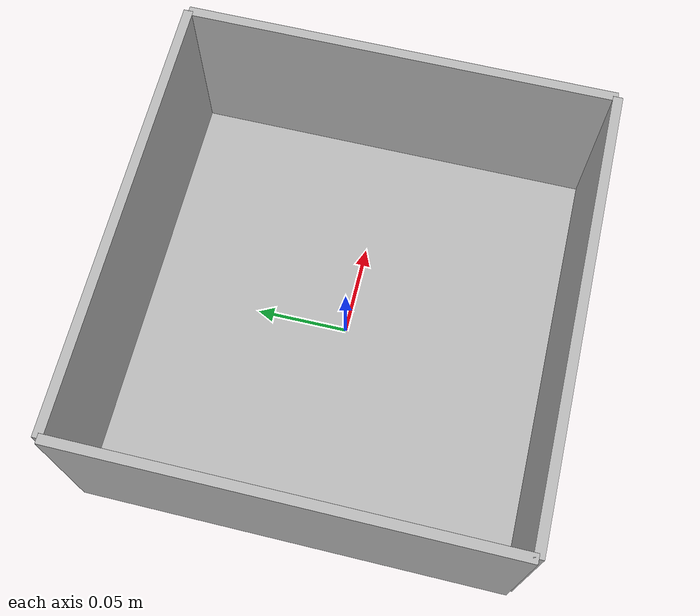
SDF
<?xml version='1.0'?>
<sdf version="1.4">
  <model name="cardboard_box">
    <static>false</static>
    <link name="link">
      <inertial>
        <mass>1.0</mass>
        <inertia> <!-- inertias are tricky to compute -->
          <!-- http://gazebosim.org/tutorials?tut=inertia&cat=build_robot -->
          <ixx>0.083</ixx>       <!-- for a box: ixx = 0.083 * mass * (y*y + z*z) -->
          <ixy>0.0</ixy>         <!-- for a box: ixy = 0 -->
          <ixz>0.0</ixz>         <!-- for a box: ixz = 0 -->
          <iyy>0.083</iyy>       <!-- for a box: iyy = 0.083 * mass * (x*x + z*z) -->
          <iyz>0.0</iyz>         <!-- for a box: iyz = 0 -->
          <izz>0.083</izz>       <!-- for a box: izz = 0.083 * mass * (x*x + y*y) -->
        </inertia>
      </inertial>
      <collision name="collision1">
        <geometry>
          <box>
            <size>0.235 0.225 0.005</size>
          </box>
        </geometry>
        <pose>0 0 0.0025 0 0 0</pose>
      </collision>
      <visual name="visual1">
        <geometry>
          <box>
            <size>0.235 0.225 0.005</size>
          </box>
        </geometry>
        <pose>0 0 0.0025 0 0 0</pose>
      </visual>
      <collision name="collision2">
        <geometry>
          <box>
            <size>0.005 0.225 0.1</size>
          </box>
        </geometry>
        <pose>0.1175 0 0.05 0 0 0</pose>
      </collision>
      <visual name="visual2">
        <geometry>
          <box>
            <size>0.005 0.225 0.1</size>
          </box>
        </geometry>
        <pose>0.1175 0 0.05 0 0 0</pose>
      </visual>
      <collision name="collision3">
        <geometry>
          <box>
            <size>0.005 0.225 0.1</size>
          </box>
        </geometry>
        <pose>-0.1175 0 0.05 0 0 0</pose>
      </collision>
      <visual name="visual3">
        <geometry>
          <box>
            <size>0.005 0.225 0.1</size>
          </box>
        </geometry>
        <pose>-0.1175 0 0.05 0 0 0</pose>
      </visual>
      <collision name="collision4">
        <geometry>
          <box>
            <size>0.235 0.005 0.1</size>
          </box>
        </geometry>
        <pose>0 0.1125 0.05 0 0 0</pose>
      </collision>
      <visual name="visual4">
        <geometry>
          <box>
            <size>0.235 0.005 0.1</size>
          </box>
        </geometry>
        <pose>0 0.1125 0.05 0 0 0</pose>
      </visual>
      <collision name="collision5">
        <geometry>
          <box>
            <size>0.235 0.005 0.1</size>
          </box>
        </geometry>
         <pose>0 -0.1125 0.05 0 0 0</pose>
      </collision>
      <visual name="visual5">
        <geometry>
          <box>
            <size>0.235 0.005 0.1</size>
          </box>
        </geometry>
         <pose>0 -0.1125 0.05 0 0 0</pose>
      </visual>
    </link>
  </model>
</sdf>
